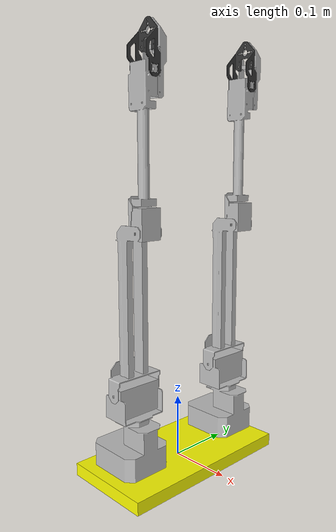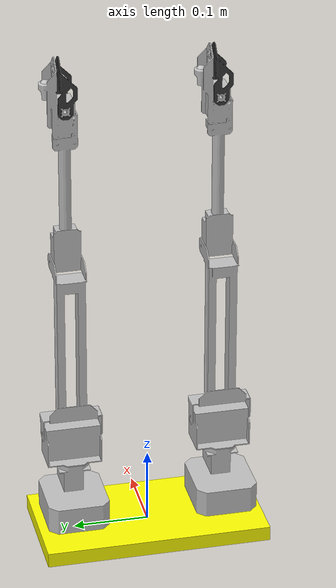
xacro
<?xml version="1.0"?>

<robot xmlns:xacro="http://www.ros.org/wiki/xacro" name="single_box_robot">
<!-- Declare Arguments with Default Values -->
  <xacro:arg name="prefix" default=""/>
  <xacro:arg name="base_link_name" default="base_link"/>
  <xacro:arg name="end_rot" default="0"/>

  <!-- Parameters -->
  <xacro:property name="box_length" value="0.15"/>
  <xacro:property name="box_width" value="0.3"/>
  <xacro:property name="box_height" value="0.02"/>
  <xacro:property name="box_color" value="1.0 1.0 0.0 1.0"/>

  <!-- Base Link -->
  <link name="$(arg prefix)base_link">
    <visual>
      <geometry>
        <box size ="${box_length} ${box_width} ${box_height}"/>
      </geometry>
      <material name="yellow">
        <color rgba="${box_color}"/>
      </material>
    </visual>
    <collision>
      <geometry>
        <box size ="${box_length} ${box_width} ${box_height}"/>
      </geometry>
    </collision>
    <inertial>
      <mass value="1.0"/>
      <inertia ixx="0.01" ixy="0.0" ixz="0.0" iyy="0.01" iyz="0.0" izz="0.01"/>
    </inertial>
  </link>

  <!-- Arm1 Base Link Joint -->
  <joint name="arm_to_bot_joint" type="fixed">
    <parent link="$(arg prefix)base_link"/> <!-- whatever link we want to join the arm to -->
    <child link="$(arg prefix)arm_left/$(arg base_link_name)"/>
    <origin xyz="0 0.1 ${box_height}" rpy="0 0 0"/>
  </joint>

<!-- Arm2 Base Link Joint -->
  <joint name="arm_to_bot_joint_2" type="fixed">
    <parent link="$(arg prefix)base_link"/> <!-- whatever link we want to join the arm to -->
    <child link="$(arg prefix)arm_right/$(arg base_link_name)"/>
    <origin xyz="0 -0.1 ${box_height}" rpy="0 0 0"/>
  </joint>

  <!-- Include the Macro Definition -->
  <xacro:include filename="$(find roarm_description)/urdf/roarm_description.urdf.xacro"/>

  <!-- Instantiate the Macro, Passing the Arguments -->
  <xacro:roarm_robot_arm prefix="$(arg prefix)arm_left/" base_link_name="$(arg base_link_name)" end_rot="$(arg end_rot)"/>

  <!-- Instantiate 2nd Arm Macro, Passing the Arguments -->
  <xacro:roarm_robot_arm prefix="$(arg prefix)arm_right/" base_link_name="$(arg base_link_name)" end_rot="$(arg end_rot)"/>

</robot>

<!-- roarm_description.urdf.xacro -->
<robot xmlns:xacro="http://ros.org/wiki/xacro" name="roarm_description">

  <!-- Define properties for base_link name, prefix and end tool rotation -->
  <xacro:property name="base_link_name" value="${base_link_name:=base_link}" />
  <xacro:property name="prefix" value="${prefix:=''}" />
  <xacro:property name="end_rot" value="${end_rot:='0'}" />

  <!-- Macro to instantiate the robot arm with parameterized names -->
  <xacro:macro name="roarm_robot_arm" params="base_link_name prefix end_rot">

    <!-- Base Link -->
    <link name="${prefix}${base_link_name}">
      <inertial>
        <origin
          xyz="0.00373847392098165 -1.52445893424664E-10 0.0264265327292804"
          rpy="0 0 0" />
        <mass value="0.326392759093976" />
        <inertia
          ixx="0.000224202818963409"
          ixy="-1.96773409840189E-13"
          ixz="-2.99224798427881E-05"
          iyy="0.000286616921839535"
          iyz="-3.10964171549742E-13"
          izz="0.000349957607258242" />
      </inertial>
      <visual>
        <origin
          xyz="0 0 0"
          rpy="0 0 0" />
        <geometry>
          <mesh
            filename="package://roarm_description/meshes/base_link.STL" />
        </geometry>
        <material name="">
          <color
            rgba="0.752941176470588 0.752941176470588 0.752941176470588 1" />
        </material>
      </visual>
      <collision>
        <origin
          xyz="0 0 0"
          rpy="0 0 0" />
        <geometry>
          <mesh
            filename="package://roarm_description/meshes/base_link.STL" />
        </geometry>
      </collision>
    </link>

    <!-- Link1 -->
    <link name="${prefix}link1">
      <inertial>
        <origin
          xyz="-3.11559626639357E-12 9.70240468164796E-06 -0.0146667419724465"
          rpy="0 0 0" />
        <mass value="0.0928887601998397" />
        <inertia
          ixx="6.09210980255232E-05"
          ixy="-2.79207542479444E-18"
          ixz="4.24841739939559E-15"
          iyy="2.53493566630784E-05"
          iyz="2.16442830142331E-08"
          izz="4.88050835919342E-05" />
      </inertial>
      <visual>
        <origin
          xyz="0 0 0"
          rpy="0 0 0" />
        <geometry>
          <mesh
            filename="package://roarm_description/meshes/link1.STL" />
        </geometry>
        <material name="">
          <color
            rgba="0.752941176470588 0.752941176470588 0.752941176470588 1" />
        </material>
      </visual>
      <collision>
        <origin
          xyz="0 0 0"
          rpy="0 0 0" />
        <geometry>
          <mesh
            filename="package://roarm_description/meshes/link1.STL" />
        </geometry>
      </collision>
    </link>

    <!-- Joint: base_link to link1 -->
    <joint name="${prefix}base_link_to_link1" type="revolute">
      <origin
        xyz="0.0100000008759151 0 0.123059270461044"
        rpy="0 0 0" />
      <parent link="${prefix}${base_link_name}" />
      <child link="${prefix}link1" />
      <axis xyz="0 0 -1" />
      <limit
        lower="-3.1416"
        upper="3.1416"
        effort="0"
        velocity="0" />
    </joint>

    <!-- Link2 -->
    <link name="${prefix}link2">
      <inertial>
        <origin
          xyz="0.122021157535333 6.61338425981053E-05 -9.50311342843365E-05"
          rpy="0 0 0" />
        <mass value="0.0895817175833772" />
        <inertia
          ixx="2.6269354271334E-05"
          ixy="-2.55344668379587E-06"
          ixz="-3.90237379833709E-09"
          iyy="0.000350369536011831"
          iyz="-6.82396195680563E-09"
          izz="0.000333056833230846" />
      </inertial>
      <visual>
        <origin
          xyz="0 0 0"
          rpy="0 0 0" />
        <geometry>
          <mesh
            filename="package://roarm_description/meshes/link2.STL" />
        </geometry>
        <material name="">
          <color
            rgba="0.752941176470588 0.752941176470588 0.752941176470588 1" />
        </material>
      </visual>
      <collision>
        <origin
          xyz="0 0 0"
          rpy="0 0 0" />
        <geometry>
          <mesh
            filename="package://roarm_description/meshes/link2.STL" />
        </geometry>
      </collision>
    </link>

    <!-- Joint: link1 to link2 -->
    <joint name="${prefix}link1_to_link2" type="revolute">
      <origin
        xyz="0 0 0"
        rpy="-1.5707963267949 -1.5707963267949 0" />
      <parent link="${prefix}link1" />
      <child link="${prefix}link2" />
      <axis xyz="0 0 -1" />
      <limit
        lower="-1.5708"
        upper="1.5708"
        effort="0"
        velocity="0" />
    </joint>

    <!-- Link3 -->
    <link name="${prefix}link3">
      <inertial>
        <origin
          xyz="-0.00076280945740961 -0.114419656440929 -0.000177274968057332"
          rpy="0 0 0" />
        <mass value="0.123009044986454" />
        <inertia
          ixx="0.000104111883333949"
          ixy="1.06443789581137E-07"
          ixz="1.54925816846055E-07"
          iyy="1.46357151076022E-05"
          iyz="-1.6435520156444E-07"
          izz="0.000104009297710106" />
      </inertial>
      <visual>
        <origin
          xyz="0 0 0"
          rpy="0 0 0" />
        <geometry>
          <mesh
            filename="package://roarm_description/meshes/link3_${end_rot}.STL" />
        </geometry>
        <material name="">
          <color
            rgba="0.752941176470588 0.752941176470588 0.752941176470588 1" />
        </material>
      </visual>
      <collision>
        <origin
          xyz="0 0 0"
          rpy="0 0 0" />
        <geometry>
          <mesh
            filename="package://roarm_description/meshes/link3.STL" />
        </geometry>
      </collision>
    </link>

    <!-- Joint: link2 to link3 -->
    <joint name="${prefix}link2_to_link3" type="revolute">
      <origin
        xyz="0.236815132922094 0.0300023995170449 0"
        rpy="0 0 1.5707963267949" />
      <parent link="${prefix}link2" />
      <child link="${prefix}link3" />
      <axis xyz="0 0 1" />
      <limit
        lower="-1"
        upper="3.1416"
        effort="0"
        velocity="0" />
    </joint>

    <!-- Gripper Link -->
    <link name="${prefix}gripper_link">
      <inertial>
        <origin
          xyz="0.0288857415118809 -0.000776842039187049 -0.000779764534254559"
          rpy="0 0 0" />
        <mass value="0.00365697683069397" />
        <inertia
          ixx="1.15139272656909E-06"
          ixy="1.31250385773157E-07"
          ixz="-2.41954534039415E-13"
          iyy="2.33034171341163E-06"
          iyz="4.1392257505497E-13"
          izz="1.47179863096272E-06" />
      </inertial>
      <visual>
        <origin
          xyz="0 0 0"
          rpy="0 0 0" />
        <geometry>
          <mesh
            filename="package://roarm_description/meshes/gripper_link.STL" />
        </geometry>
        <material name="">
          <color
            rgba="0.219607843137255 0.219607843137255 0.219607843137255 1" />
        </material>
      </visual>
      <collision>
        <origin
          xyz="0 0 0"
          rpy="0 0 0" />
        <geometry>
          <mesh
            filename="package://roarm_description/meshes/gripper_link.STL" />
        </geometry>
      </collision>
    </link>

    <!-- Joint: link3 to gripper_link -->
    <joint name="${prefix}link3_to_gripper_link" type="revolute">
          <xacro:if value="${end_rot == 90}">
            <origin
              xyz="-0.002906 -0.21599 0.00466683"
              rpy="0 0 -1.5708" />
          </xacro:if>
          <xacro:if value="${end_rot == 180}">
            <origin
              xyz="-0.007906 -0.21599 -0.00066683"
              rpy="1.5708 0 -1.5708" />
          </xacro:if>
          <xacro:if value="${end_rot == 270}">
            <origin
              xyz="-0.002906 -0.21599 -0.00686683"
              rpy="0 3.14159 1.5708" />
          </xacro:if>
          <xacro:if value="${end_rot == 0}">
            <origin
              xyz="0.002906 -0.21599 -0.00066683"
              rpy="-1.5708 0 -1.5708" />
          </xacro:if>
      <parent link="${prefix}link3" />
      <child link="${prefix}gripper_link" />
      <axis xyz="0 0 1" />
      <limit
        lower="0"
        upper="1.5"
        effort="0"
        velocity="0" />
    </joint>

    <!-- Hand TCP Link -->
    <link name="${prefix}hand_tcp"></link>

    <!-- Joint: link3 to hand_tcp -->
    <joint name="${prefix}link3_to_hand_tcp" type="fixed">
      <origin
        xyz="0.002 -0.2802 0"
        rpy="-1.5708 0 -1.5708" />
      <parent link="${prefix}link3" />
      <child link="${prefix}hand_tcp" />
      <axis xyz="0 0 0" />
    </joint>

  </xacro:macro>

</robot>
